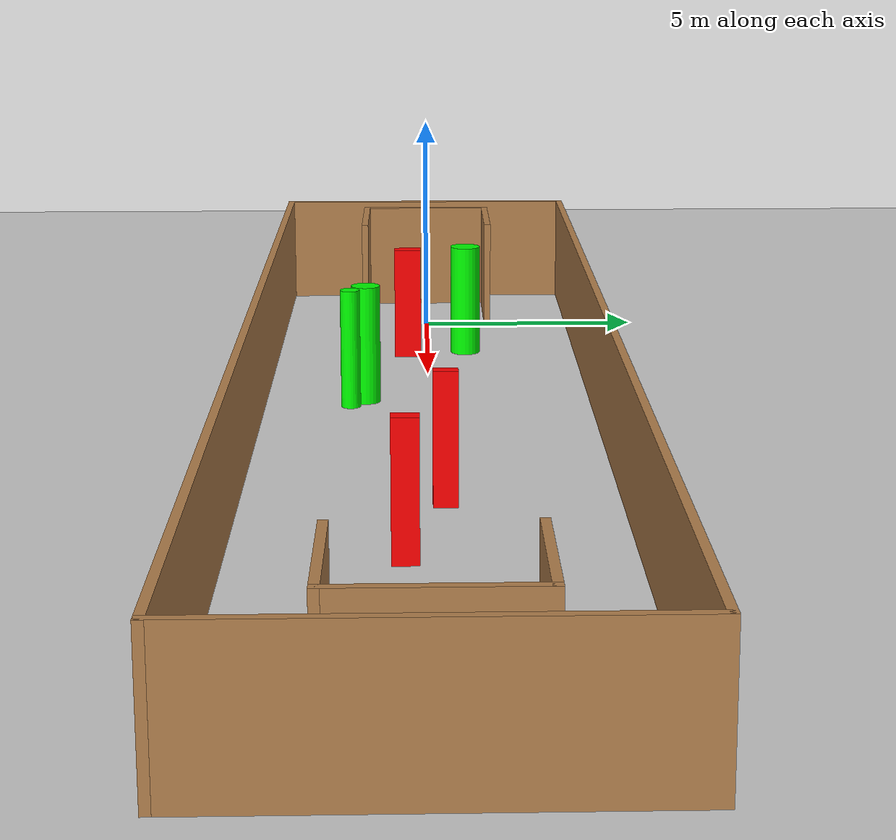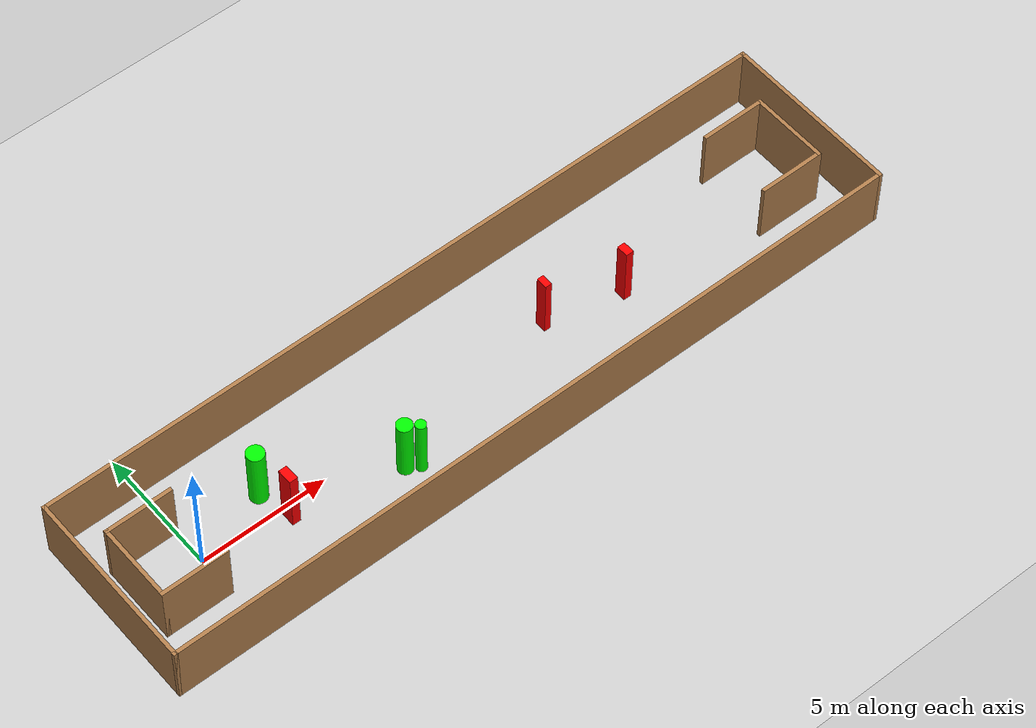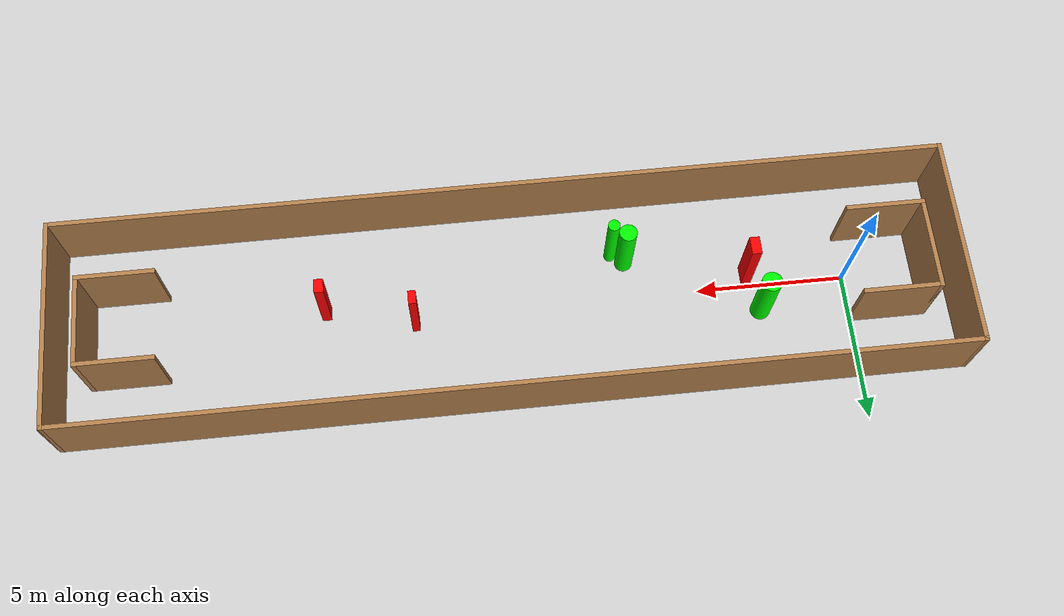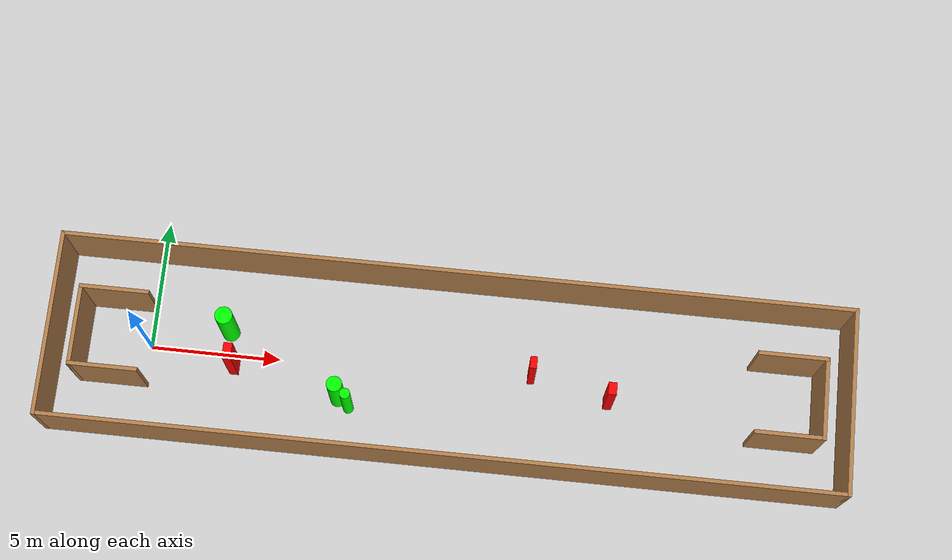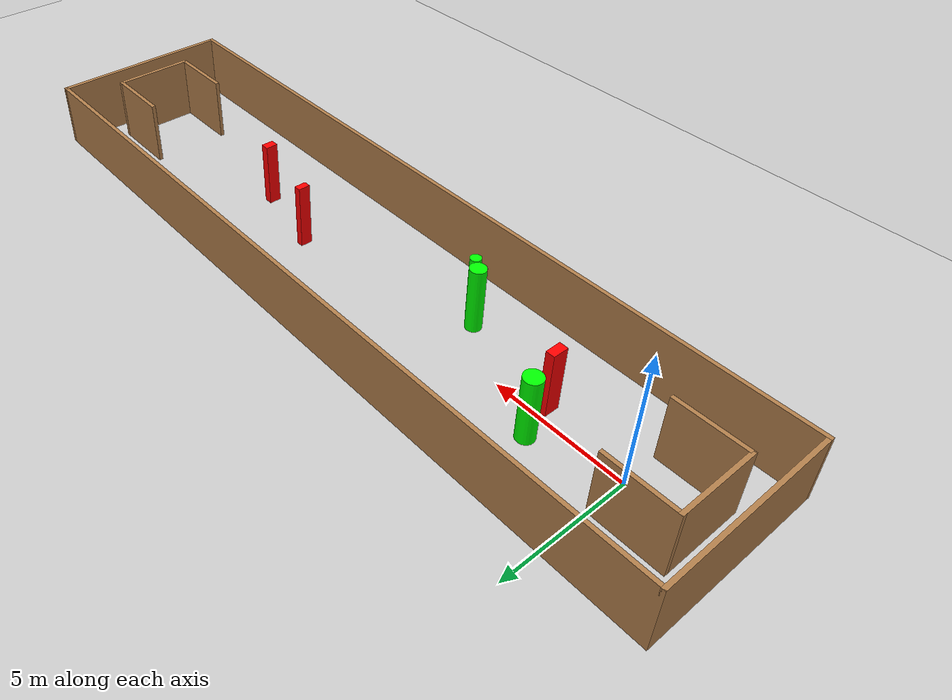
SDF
<sdf version="1.7">
 <world name="default">
  <light name="sun" type="directional">
   <pose>0 0 10 0 -0 0</pose>
   <diffuse>0.8 0.8 0.8 1</diffuse>
   <specular>0.2 0.2 0.2 1</specular>
   <attenuation>
    <range>1000</range>
    <constant>0.9</constant>
    <linear>0.01</linear>
    <quadratic>0.001</quadratic>
   </attenuation>
   <direction>-0.5 0.1 -0.9</direction>
   <spot><inner_angle>0</inner_angle><outer_angle>0</outer_angle><falloff>0</falloff></spot>
  </light>
  <model name="ground_plane">
   <static>1</static>
   <link name="link">
    <collision name="collision">
     <geometry><plane><normal>0 0 1</normal><size>100 100</size></plane></geometry>
     <surface>
      <contact><collide_bitmask>65535</collide_bitmask></contact>
      <friction><ode><mu>100</mu><mu2>50</mu2></ode></friction>
     </surface>
    </collision>
    <visual name="visual">
     <cast_shadows>0</cast_shadows>
     <geometry><plane><normal>0 0 1</normal><size>100 100</size></plane></geometry>
     <material>
      <script><uri>file://media/materials/scripts/gazebo.material</uri><name>Gazebo/Grey</name></script>
     </material>
    </visual>
   </link>
  </model>
  <gravity>0 0 -9.8</gravity>
  <magnetic_field>6e-06 2.3e-05 -4.2e-05</magnetic_field>
  <atmosphere type="adiabatic"/>
  <physics type="ode">
   <max_step_size>0.001</max_step_size>
   <real_time_factor>1</real_time_factor>
   <real_time_update_rate>1000</real_time_update_rate>
  </physics>
  <scene><ambient>0.4 0.4 0.4 1</ambient><background>0.7 0.7 0.7 1</background><shadows>1</shadows></scene>
  <spherical_coordinates>
   <surface_model>EARTH_WGS84</surface_model>
   <latitude_deg>0</latitude_deg>
   <longitude_deg>0</longitude_deg>
   <elevation>0</elevation>
   <heading_deg>0</heading_deg>
  </spherical_coordinates>
  <model name="my_base_walls">
   <link name="Wall_0">
    <collision name="Wall_0_Collision">
     <geometry><box><size>7.15 0.15 2.5</size></box></geometry>
     <pose>0 0 1.25 0 -0 0</pose>
    </collision>
    <visual name="Wall_0_Visual">
     <pose>0 0 1.25 0 -0 0</pose>
     <geometry><box><size>7.15 0.15 2.5</size></box></geometry>
     <material>
      <script><uri>file://media/materials/scripts/gazebo.material</uri><name>Gazebo/Wood</name></script>
      <ambient>1 1 1 1</ambient>
     </material>
     <meta><layer>0</layer></meta>
    </visual>
    <pose>-15 0 0 0 -0 1.5708</pose>
   </link>
   <link name="Wall_10">
    <collision name="Wall_10_Collision">
     <geometry><box><size>2.65 0.15 2.5</size></box></geometry>
     <pose>0 0 1.25 0 -0 0</pose>
    </collision>
    <visual name="Wall_10_Visual">
     <pose>0 0 1.25 0 -0 0</pose>
     <geometry><box><size>2.65 0.15 2.5</size></box></geometry>
     <material>
      <script><uri>file://media/materials/scripts/gazebo.material</uri><name>Gazebo/Wood</name></script>
      <ambient>1 1 1 1</ambient>
     </material>
     <meta><layer>0</layer></meta>
    </visual>
    <pose>-12.75 -1.5 0 0 -0 0</pose>
   </link>
   <link name="Wall_12">
    <collision name="Wall_12_Collision">
     <geometry><box><size>2.65 0.15 2.5</size></box></geometry>
     <pose>0 0 1.25 0 -0 0</pose>
    </collision>
    <visual name="Wall_12_Visual">
     <pose>0 0 1.25 0 -0 0</pose>
     <geometry><box><size>2.65 0.15 2.5</size></box></geometry>
     <material>
      <script><uri>file://media/materials/scripts/gazebo.material</uri><name>Gazebo/Wood</name></script>
      <ambient>1 1 1 1</ambient>
     </material>
     <meta><layer>0</layer></meta>
    </visual>
    <pose>-12.75 1.5 0 0 -0 0</pose>
   </link>
   <link name="Wall_14">
    <collision name="Wall_14_Collision">
     <geometry><box><size>3.15 0.15 2.5</size></box></geometry>
     <pose>0 0 1.25 0 -0 0</pose>
    </collision>
    <visual name="Wall_14_Visual">
     <pose>0 0 1.25 0 -0 0</pose>
     <geometry><box><size>3.15 0.15 2.5</size></box></geometry>
     <material>
      <script><uri>file://media/materials/scripts/gazebo.material</uri><name>Gazebo/Wood</name></script>
      <ambient>1 1 1 1</ambient>
     </material>
     <meta><layer>0</layer></meta>
    </visual>
    <pose>14 0 0 0 -0 -1.5708</pose>
   </link>
   <link name="Wall_15">
    <collision name="Wall_15_Collision">
     <geometry><box><size>2.65 0.15 2.5</size></box></geometry>
     <pose>0 0 1.25 0 -0 0</pose>
    </collision>
    <visual name="Wall_15_Visual">
     <pose>0 0 1.25 0 -0 0</pose>
     <geometry><box><size>2.65 0.15 2.5</size></box></geometry>
     <material>
      <script><uri>file://media/materials/scripts/gazebo.material</uri><name>Gazebo/Wood</name></script>
      <ambient>1 1 1 1</ambient>
     </material>
     <meta><layer>0</layer></meta>
    </visual>
    <pose>12.75 -1.5 0 0 -0 3.14159</pose>
   </link>
   <link name="Wall_17">
    <collision name="Wall_17_Collision">
     <geometry><box><size>2.65 0.15 2.5</size></box></geometry>
     <pose>0 0 1.25 0 -0 0</pose>
    </collision>
    <visual name="Wall_17_Visual">
     <pose>0 0 1.25 0 -0 0</pose>
     <geometry><box><size>2.65 0.15 2.5</size></box></geometry>
     <material>
      <script><uri>file://media/materials/scripts/gazebo.material</uri><name>Gazebo/Wood</name></script>
      <ambient>1 1 1 1</ambient>
     </material>
     <meta><layer>0</layer></meta>
    </visual>
    <pose>12.75 1.5 0 0 -0 3.14159</pose>
   </link>
   <link name="Wall_2">
    <collision name="Wall_2_Collision">
     <geometry><box><size>30.15 0.15 2.5</size></box></geometry>
     <pose>0 0 1.25 0 -0 0</pose>
    </collision>
    <visual name="Wall_2_Visual">
     <pose>0 0 1.25 0 -0 0</pose>
     <geometry><box><size>30.15 0.15 2.5</size></box></geometry>
     <material>
      <script><uri>file://media/materials/scripts/gazebo.material</uri><name>Gazebo/Wood</name></script>
      <ambient>1 1 1 1</ambient>
     </material>
     <meta><layer>0</layer></meta>
    </visual>
    <pose>-0 -3.5 0 0 -0 0</pose>
   </link>
   <link name="Wall_4">
    <collision name="Wall_4_Collision">
     <geometry><box><size>30.15 0.15 2.5</size></box></geometry>
     <pose>0 0 1.25 0 -0 0</pose>
    </collision>
    <visual name="Wall_4_Visual">
     <pose>0 0 1.25 0 -0 0</pose>
     <geometry><box><size>30.15 0.15 2.5</size></box></geometry>
     <material>
      <script><uri>file://media/materials/scripts/gazebo.material</uri><name>Gazebo/Wood</name></script>
      <ambient>1 1 1 1</ambient>
     </material>
     <meta><layer>0</layer></meta>
    </visual>
    <pose>-0 3.5 0 0 -0 0</pose>
   </link>
   <link name="Wall_6">
    <collision name="Wall_6_Collision">
     <geometry><box><size>7.15 0.15 2.5</size></box></geometry>
     <pose>0 0 1.25 0 -0 0</pose>
    </collision>
    <visual name="Wall_6_Visual">
     <pose>0 0 1.25 0 -0 0</pose>
     <geometry><box><size>7.15 0.15 2.5</size></box></geometry>
     <material>
      <script><uri>file://media/materials/scripts/gazebo.material</uri><name>Gazebo/Wood</name></script>
      <ambient>1 1 1 1</ambient>
     </material>
     <meta><layer>0</layer></meta>
    </visual>
    <pose>15 0 0 0 -0 -1.5708</pose>
   </link>
   <link name="Wall_9">
    <collision name="Wall_9_Collision">
     <geometry><box><size>3.15 0.15 2.5</size></box></geometry>
     <pose>0 0 1.25 0 -0 0</pose>
    </collision>
    <visual name="Wall_9_Visual">
     <pose>0 0 1.25 0 -0 0</pose>
     <geometry><box><size>3.15 0.15 2.5</size></box></geometry>
     <material>
      <script><uri>file://media/materials/scripts/gazebo.material</uri><name>Gazebo/Wood</name></script>
      <ambient>1 1 1 1</ambient>
     </material>
     <meta><layer>0</layer></meta>
    </visual>
    <pose>-14 0 0 0 -0 -1.5708</pose>
   </link>
   <static>1</static>
   <pose>11.5 0 0 0 -0 0</pose>
  </model>
  <model name="cylinder1">
   <static>1</static>
   <link name="link">
    <inertial>
     <mass>1</mass>
     <inertia><ixx>0.5</ixx><ixy>0</ixy><ixz>0</ixz><iyy>0.5</iyy><iyz>0</iyz><izz>1</izz></inertia>
    </inertial>
    <collision name="collision">
     <geometry><cylinder><radius>0.2986710712218673</radius><length>2.5</length></cylinder></geometry>
    </collision>
    <visual name="visual">
     <geometry><cylinder><radius>0.2986710712218673</radius><length>2.5</length></cylinder></geometry>
     <material>
      <ambient>0 1 0 1</ambient>
      <diffuse>0 1 0 1</diffuse>
      <specular>0.1 0.1 0.1 1</specular>
      <emissive>0 0 0 0</emissive>
     </material>
    </visual>
   </link>
   <pose>7.39238785633016 -1.3078120637347022 1.25 0 0 0</pose>
  </model>
  <model name="cylinder2">
   <static>1</static>
   <link name="link">
    <inertial>
     <mass>1</mass>
     <inertia><ixx>0.5</ixx><ixy>0</ixy><ixz>0</ixz><iyy>0.5</iyy><iyz>0</iyz><izz>1</izz></inertia>
    </inertial>
    <collision name="collision">
     <geometry><cylinder><radius>0.3357531324095721</radius><length>2.5</length></cylinder></geometry>
    </collision>
    <visual name="visual">
     <geometry><cylinder><radius>0.3357531324095721</radius><length>2.5</length></cylinder></geometry>
     <material>
      <ambient>0 1 0 1</ambient>
      <diffuse>0 1 0 1</diffuse>
      <specular>0.1 0.1 0.1 1</specular>
      <emissive>0 0 0 0</emissive>
     </material>
    </visual>
   </link>
   <pose>2.9722636143302203 0.8866422936475331 1.25 0 0 0</pose>
  </model>
  <model name="cylinder3">
   <static>1</static>
   <link name="link">
    <inertial>
     <mass>1</mass>
     <inertia><ixx>0.5</ixx><ixy>0</ixy><ixz>0</ixz><iyy>0.5</iyy><iyz>0</iyz><izz>1</izz></inertia>
    </inertial>
    <collision name="collision">
     <geometry><cylinder><radius>0.2021435902298162</radius><length>2.5</length></cylinder></geometry>
    </collision>
    <visual name="visual">
     <geometry><cylinder><radius>0.2021435902298162</radius><length>2.5</length></cylinder></geometry>
     <material>
      <ambient>0 1 0 1</ambient>
      <diffuse>0 1 0 1</diffuse>
      <specular>0.1 0.1 0.1 1</specular>
      <emissive>0 0 0 0</emissive>
     </material>
    </visual>
   </link>
   <pose>7.821422231512967 -1.6239636495403729 1.25 0 0 0</pose>
  </model>
  <model name="box1">
   <static>1</static>
   <link name="link">
    <inertial>
     <mass>1</mass>
     <inertia><ixx>0.083</ixx><ixy>0</ixy><ixz>0</ixz><iyy>0.083</iyy><iyz>0</iyz><izz>0.083</izz></inertia>
    </inertial>
    <collision name="collision">
     <geometry><box><size>0.25941847470070956 0.45290838110003856 2.5</size></box></geometry>
    </collision>
    <visual name="visual">
     <geometry><box><size>0.25941847470070956 0.45290838110003856 2.5</size></box></geometry>
     <material>
      <ambient>1 0 0 1</ambient>
      <diffuse>1 0 0 1</diffuse>
      <specular>0.1 0.1 0.1 1</specular>
      <emissive>0 0 0 0</emissive>
     </material>
    </visual>
    <sensor name="my_contact" type="contact">
     <contact><collision>box_collision</collision><topic>__default_topic__</topic></contact>
    </sensor>
   </link>
   <pose>14.659407554109109 0.26733964598509896 1.25 0 0 0</pose>
  </model>
  <model name="box2">
   <static>1</static>
   <link name="link">
    <inertial>
     <mass>1</mass>
     <inertia><ixx>0.083</ixx><ixy>0</ixy><ixz>0</ixz><iyy>0.083</iyy><iyz>0</iyz><izz>0.083</izz></inertia>
    </inertial>
    <collision name="collision">
     <geometry><box><size>0.3300052201009209 0.5971066619855901 2.5</size></box></geometry>
    </collision>
    <visual name="visual">
     <geometry><box><size>0.3300052201009209 0.5971066619855901 2.5</size></box></geometry>
     <material>
      <ambient>1 0 0 1</ambient>
      <diffuse>1 0 0 1</diffuse>
      <specular>0.1 0.1 0.1 1</specular>
      <emissive>0 0 0 0</emissive>
     </material>
    </visual>
    <sensor name="my_contact" type="contact">
     <contact><collision>box_collision</collision><topic>__default_topic__</topic></contact>
    </sensor>
   </link>
   <pose>3.2924518763940984 -0.44341083363329137 1.25 0 0 0</pose>
  </model>
  <model name="box3">
   <static>1</static>
   <link name="link">
    <inertial>
     <mass>1</mass>
     <inertia><ixx>0.083</ixx><ixy>0</ixy><ixz>0</ixz><iyy>0.083</iyy><iyz>0</iyz><izz>0.083</izz></inertia>
    </inertial>
    <collision name="collision">
     <geometry><box><size>0.31390022459032885 0.46749264954207403 2.5</size></box></geometry>
    </collision>
    <visual name="visual">
     <geometry><box><size>0.31390022459032885 0.46749264954207403 2.5</size></box></geometry>
     <material>
      <ambient>1 0 0 1</ambient>
      <diffuse>1 0 0 1</diffuse>
      <specular>0.1 0.1 0.1 1</specular>
      <emissive>0 0 0 0</emissive>
     </material>
    </visual>
    <sensor name="my_contact" type="contact">
     <contact><collision>box_collision</collision><topic>__default_topic__</topic></contact>
    </sensor>
   </link>
   <pose>17.648511031470505 -0.4269841243599952 1.25 0 0 0</pose>
  </model>
 </world>
</sdf>
